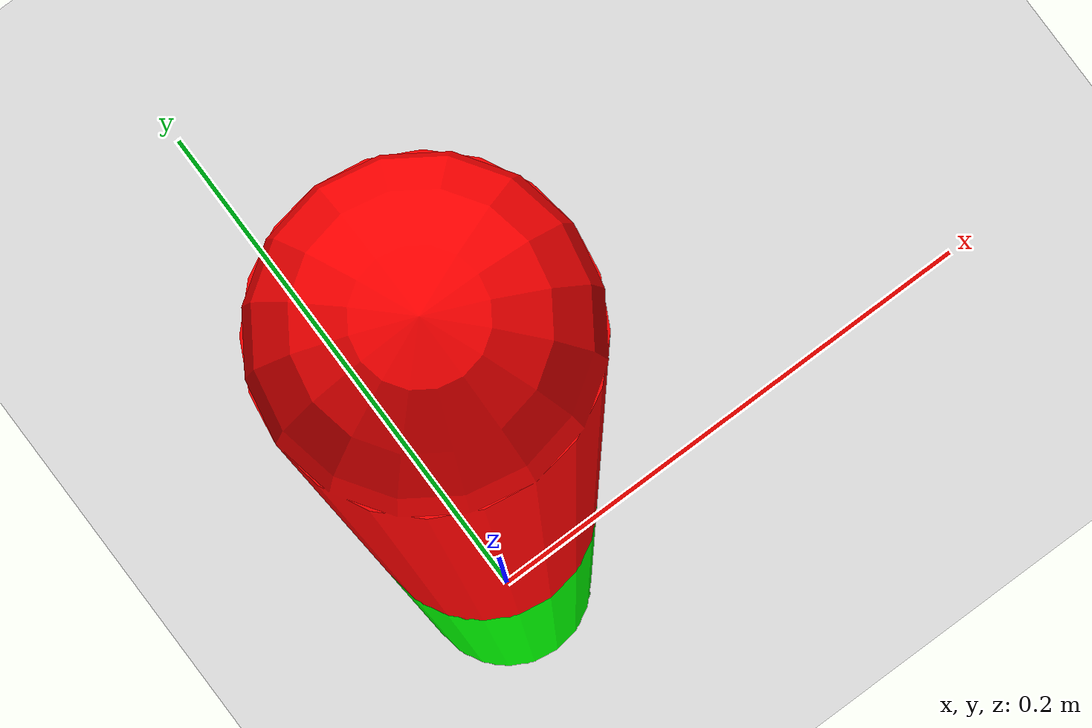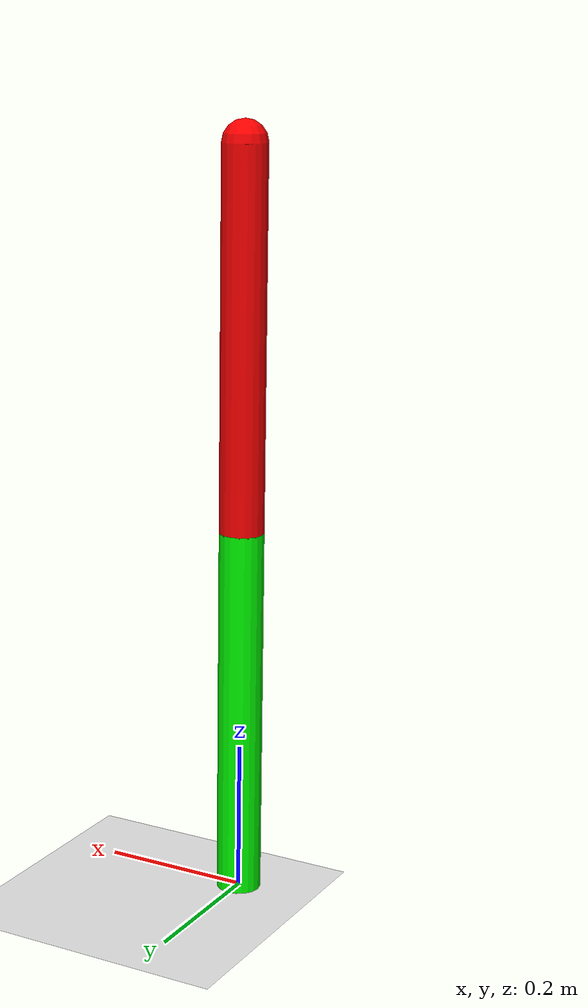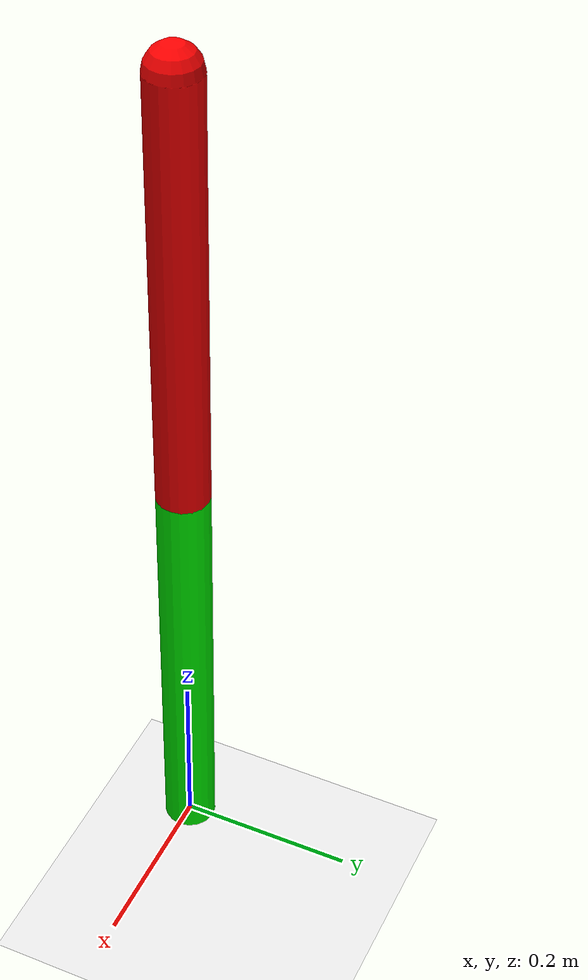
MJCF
<mujoco model="double_pendulum">
  <option timestep="0.002" integrator="RK4" gravity="0 0 -9.81"/>

  <worldbody>
    <light diffuse=".5 .5 .5" pos="0 0 3" dir="0 0 -1"/>
    <geom type="plane" size="1 1 0.1" rgba=".9 .9 .9 1"/>

    <body name="link1" pos="0 0 1">
      <joint name="joint1" pos="0 0 0" axis="0 1 0"/>
      <geom name="geom1" type="capsule" fromto="0 0 0 0 0 -0.5" size="0.03" rgba="1 0 0 1"/>

      <body name="link2" pos="0 0 -0.5">
        <joint name="joint2" pos="0 0 0" axis="0 1 0"/>
        <geom name="geom2" type="capsule" fromto="0 0 0 0 0 -0.5" size="0.03" rgba="0 1 0 1"/>
        <site name="tip" pos="0 0 -0.5" size="0.01"/>
      </body>
    </body>
  </worldbody>

  <actuator>
    <motor name="motor1" joint="joint1" gear="1" ctrllimited="true" ctrlrange="-10 10"/>
    <motor name="motor2" joint="joint2" gear="1" ctrllimited="true" ctrlrange="-10 10"/>
  </actuator>
</mujoco>
